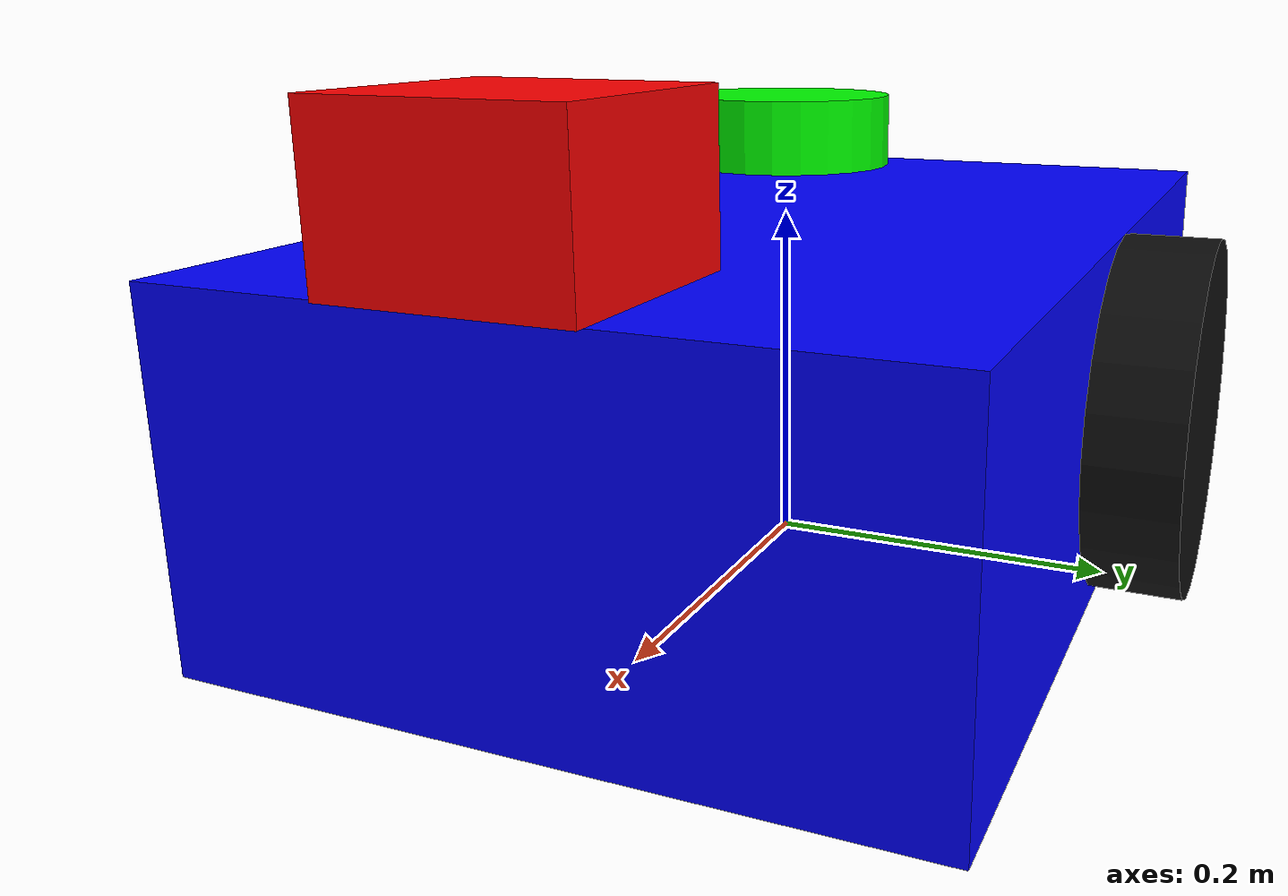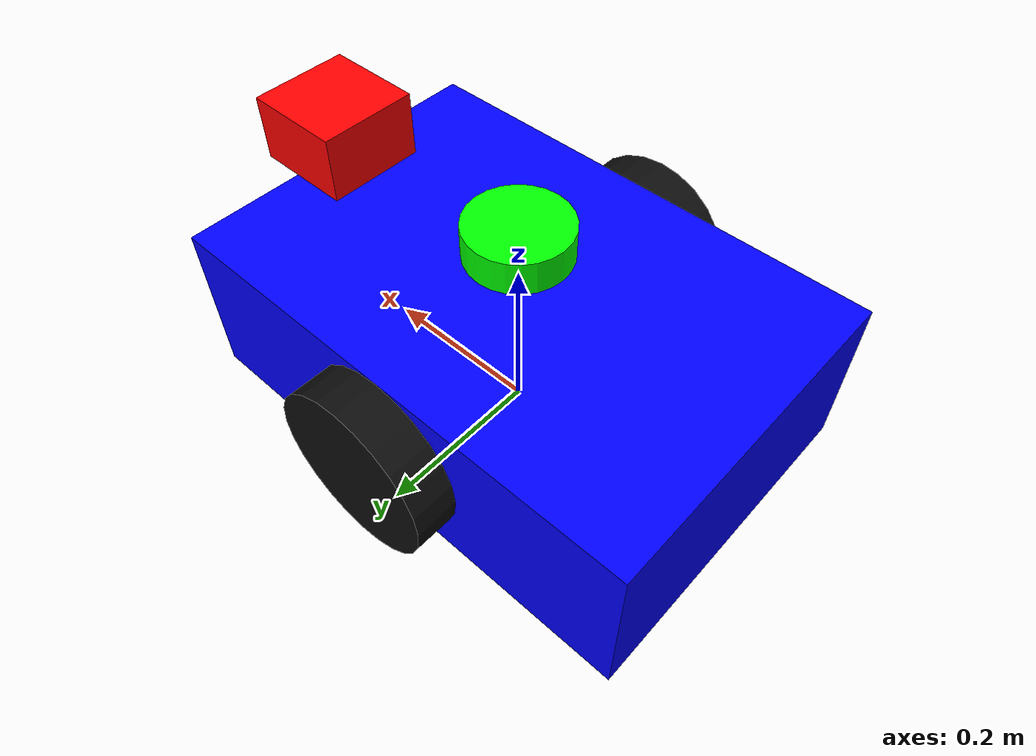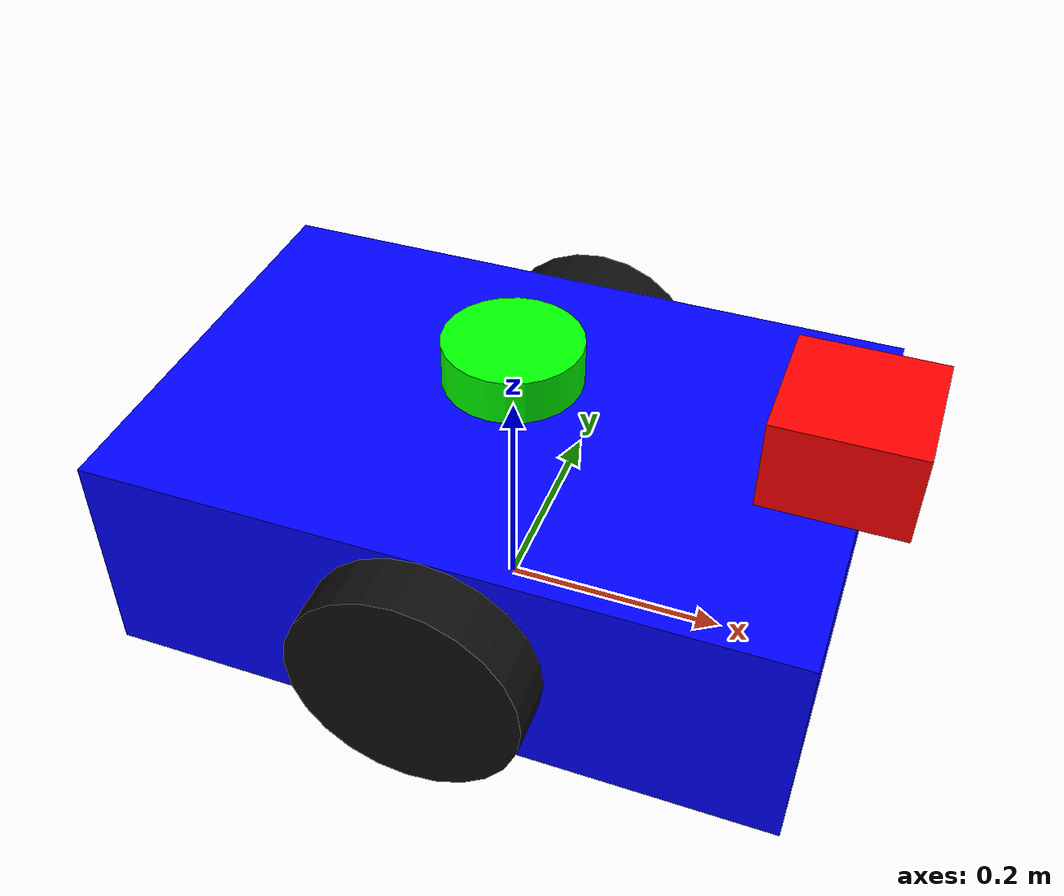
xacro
<?xml version="1.0"?>

<robot name="inspection_robot"
       xmlns:xacro="http://www.ros.org/wiki/xacro">

    <!-- Robot dimensions -->

    <xacro:property name="body_length" value="0.6"/>
    <xacro:property name="body_width"  value="0.4"/>
    <xacro:property name="body_height" value="0.2"/>

    <xacro:property name="wheel_radius" value="0.1"/>
    <xacro:property name="wheel_width"  value="0.05"/>

    <!-- Base -->

    <link name="base_link">

        <!-- Physics -->
        <inertial>
            <origin xyz="0 0 0.1" rpy="0 0 0"/>
            <mass value="10.0"/>

            <inertia
                ixx="0.1667"
                ixy="0.0"
                ixz="0.0"
                iyy="0.3333"
                iyz="0.0"
                izz="0.4333"/>
        </inertial>

        <!-- Visual -->
        <visual>
            <origin xyz="0 0 0.1" rpy="0 0 0"/>

            <geometry>
                <box size="${body_length} ${body_width} ${body_height}"/>
            </geometry>

            <material name="blue">
                <color rgba="0 0 1 1"/>
            </material>
        </visual>

        <!-- Collision -->
        <collision>
            <origin xyz="0 0 0.1" rpy="0 0 0"/>

            <geometry>
                <box size="${body_length} ${body_width} ${body_height}"/>
            </geometry>
        </collision>

    </link>

    <!-- Left wheel -->

    <link name="left_wheel_link">

        <!-- Physics -->
        <inertial>
            <origin xyz="0 0 0" rpy="0 0 0"/>
            <mass value="1.0"/>

            <inertia
                ixx="0.002917"
                ixy="0.0"
                ixz="0.0"
                iyy="0.005"
                iyz="0.0"
                izz="0.002917"/>
        </inertial>

        <!-- Visual -->
        <visual>
            <origin xyz="0 0 0" rpy="1.5708 0 0"/>

            <geometry>
                <cylinder
                    radius="${wheel_radius}"
                    length="${wheel_width}"/>
            </geometry>

            <material name="black">
                <color rgba="0.05 0.05 0.05 1"/>
            </material>
        </visual>

        <!-- Collision -->
        <collision>
            <origin xyz="0 0 0" rpy="1.5708 0 0"/>

            <geometry>
                <cylinder
                    radius="${wheel_radius}"
                    length="${wheel_width}"/>
            </geometry>
        </collision>

    </link>

    <!-- Right wheel -->

    <link name="right_wheel_link">

        <!-- Physics -->
        <inertial>
            <origin xyz="0 0 0" rpy="0 0 0"/>
            <mass value="1.0"/>

            <inertia
                ixx="0.002917"
                ixy="0.0"
                ixz="0.0"
                iyy="0.005"
                iyz="0.0"
                izz="0.002917"/>
        </inertial>

        <!-- Visual -->
        <visual>
            <origin xyz="0 0 0" rpy="1.5708 0 0"/>

            <geometry>
                <cylinder
                    radius="${wheel_radius}"
                    length="${wheel_width}"/>
            </geometry>

            <material name="black">
                <color rgba="0.05 0.05 0.05 1"/>
            </material>
        </visual>

        <!-- Collision -->
        <collision>
            <origin xyz="0 0 0" rpy="1.5708 0 0"/>

            <geometry>
                <cylinder
                    radius="${wheel_radius}"
                    length="${wheel_width}"/>
            </geometry>
        </collision>

    </link>

    <!-- Left wheel joint -->

    <joint name="left_wheel_joint"
           type="continuous">

        <parent link="base_link"/>
        <child link="left_wheel_link"/>

        <origin xyz="0 0.225 0.1"
                rpy="0 0 0"/>

        <axis xyz="0 1 0"/>

    </joint>

    <!-- Right wheel joint -->

    <joint name="right_wheel_joint"
           type="continuous">

        <parent link="base_link"/>
        <child link="right_wheel_link"/>

        <origin xyz="0 -0.225 0.1"
                rpy="0 0 0"/>

        <axis xyz="0 1 0"/>

    </joint>

    <!-- Camera -->

    <link name="camera_link">

        <!-- Physics -->
        <inertial>
            <origin xyz="0 0 0" rpy="0 0 0"/>
            <mass value="0.1"/>

            <inertia
                ixx="0.000173"
                ixy="0.0"
                ixz="0.0"
                iyy="0.000173"
                iyz="0.0"
                izz="0.000240"/>
        </inertial>

        <!-- Visual -->
        <visual>
            <geometry>
                <box size="0.12 0.12 0.08"/>
            </geometry>

            <material name="red">
                <color rgba="1 0 0 1"/>
            </material>
        </visual>

    </link>

    <!-- Camera joint -->

    <joint name="camera_joint"
           type="fixed">

        <parent link="base_link"/>
        <child link="camera_link"/>

        <origin xyz="0.28 0 0.25"
                rpy="0 0 0"/>

    </joint>

    <!-- LiDAR -->

    <link name="lidar_link">

        <inertial>
            <origin xyz="0 0 0" rpy="0 0 0"/>
            <mass value="0.1"/>

            <inertia
                ixx="0.000513"
                ixy="0.0"
                ixz="0.0"
                iyy="0.000513"
                iyz="0.0"
                izz="0.000180"/>
        </inertial>

        <visual>
            <geometry>
                <cylinder radius="0.06" length="0.04"/>
            </geometry>

            <material name="green">
                <color rgba="0 1 0 1"/>
            </material>
        </visual>

        <collision>
            <geometry>
                <cylinder radius="0.06" length="0.04"/>
            </geometry>
        </collision>

    </link>

    <!-- LiDAR joint -->

    <joint name="lidar_joint"
           type="fixed">

        <parent link="base_link"/>
        <child link="lidar_link"/>

        <origin xyz="0 0 0.25"
                rpy="0 0 0"/>

    </joint>

    <!-- Gazebo LiDAR sensor -->

    <gazebo reference="lidar_link">

        <sensor name="lidar_sensor"
                type="ray">

            <pose>0 0 0 0 0 0</pose>

            <visualize>true</visualize>

            <update_rate>10</update_rate>

            <ray>

                <scan>

                    <horizontal>

                        <samples>360</samples>
                        <resolution>1</resolution>
                        <min_angle>-3.14159</min_angle>
                        <max_angle>3.14159</max_angle>

                    </horizontal>

                </scan>

                <range>

                    <min>0.12</min>
                    <max>10.0</max>
                    <resolution>0.01</resolution>

                </range>

            </ray>

            <plugin
                name="lidar_plugin"
                filename="libgazebo_ros_ray_sensor.so">

                <ros>
                    <namespace>/</namespace>
                    <remapping>~/out:=scan</remapping>
                </ros>

                <output_type>sensor_msgs/LaserScan</output_type>

                <frame_name>lidar_link</frame_name>

            </plugin>

        </sensor>

    </gazebo>

    <!-- Gazebo Camera Sensor -->

    <gazebo reference="camera_link">

        <sensor name="camera_sensor"
                type="camera">

            <pose>0 0 0 0 0 0</pose>

            <visualize>true</visualize>

            <update_rate>30</update_rate>

            <camera>

                <horizontal_fov>1.047</horizontal_fov>

                <image>
                    <width>640</width>
                    <height>480</height>
                    <format>R8G8B8</format>
                </image>

                <clip>
                    <near>0.05</near>
                    <far>100</far>
                </clip>

            </camera>

            <plugin
                name="camera_plugin"
                filename="libgazebo_ros_camera.so">

                <ros>
                    <namespace>/camera</namespace>
                </ros>

                <camera_name>inspection_camera</camera_name>
                <frame_name>camera_link</frame_name>

            </plugin>

        </sensor>

    </gazebo>
    <!-- Gazebo Joint States -->

    <gazebo>
        <plugin
            name="joint_state_publisher"
            filename="libgazebo_ros_joint_state_publisher.so">

            <ros>
                <namespace>/</namespace>
            </ros>

            <update_rate>50</update_rate>

            <joint_name>left_wheel_joint</joint_name>
            <joint_name>right_wheel_joint</joint_name>

        </plugin>
    </gazebo>
    <!-- Gazebo Differential Drive -->

    <gazebo>
        <plugin
            name="diff_drive"
            filename="libgazebo_ros_diff_drive.so">

            <ros>
                <namespace>/</namespace>
            </ros>

            <update_rate>50</update_rate>
            <cmd_vel_timeout>0.5</cmd_vel_timeout>
            <left_joint>left_wheel_joint</left_joint>
            <right_joint>right_wheel_joint</right_joint>

            <wheel_separation>0.45</wheel_separation>
            <wheel_diameter>0.20</wheel_diameter>

            <max_wheel_torque>20</max_wheel_torque>
            <max_wheel_acceleration>10</max_wheel_acceleration>

            <command_topic>cmd_vel</command_topic>
            <odometry_topic>odom</odometry_topic>
            <odometry_frame>odom</odometry_frame>
            <robot_base_frame>base_link</robot_base_frame>

            <publish_odom>true</publish_odom>
            <publish_odom_tf>true</publish_odom_tf>
            <publish_wheel_tf>true</publish_wheel_tf>

        </plugin>
    </gazebo>
</robot>
